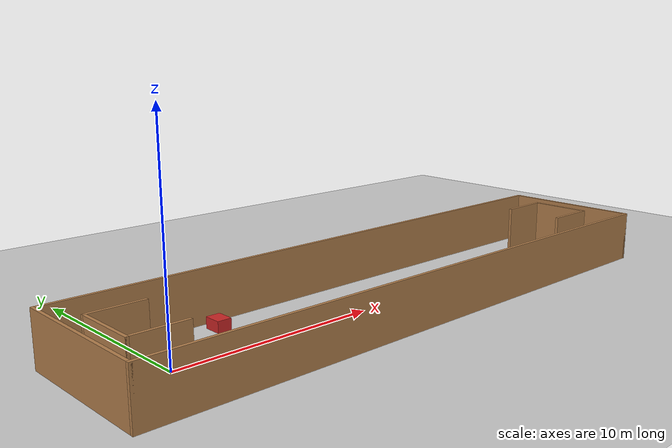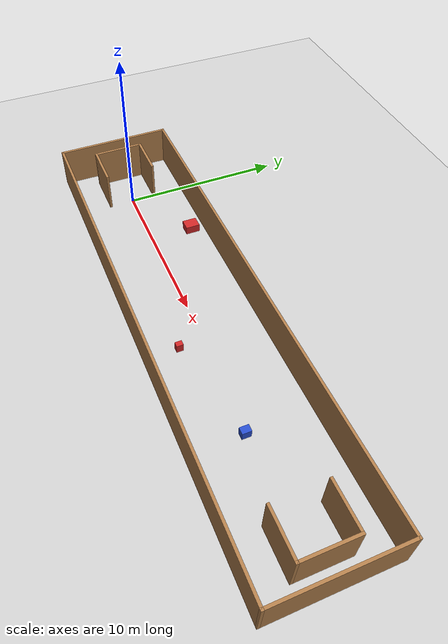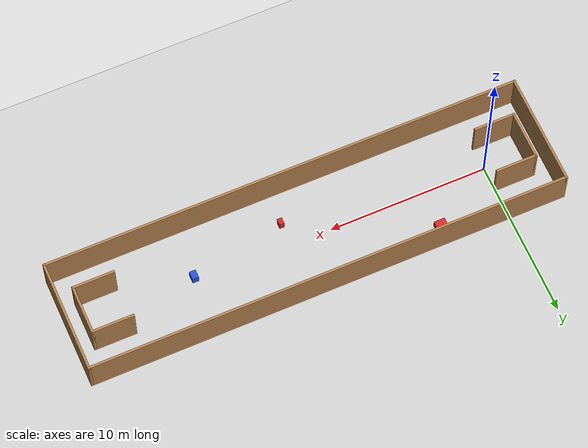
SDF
<sdf version="1.7">
 <world name="default">
  <light name="sun" type="directional">
   <pose>0 0 10 0 -0 0</pose>
   <diffuse>0.8 0.8 0.8 1</diffuse>
   <specular>0.2 0.2 0.2 1</specular>
   <attenuation>
    <range>1000</range>
    <constant>0.9</constant>
    <linear>0.01</linear>
    <quadratic>0.001</quadratic>
   </attenuation>
   <direction>-0.5 0.1 -0.9</direction>
   <spot><inner_angle>0</inner_angle><outer_angle>0</outer_angle><falloff>0</falloff></spot>
  </light>
  <model name="ground_plane">
   <static>1</static>
   <link name="link">
    <collision name="collision">
     <geometry><plane><normal>0 0 1</normal><size>100 100</size></plane></geometry>
     <surface>
      <contact><collide_bitmask>65535</collide_bitmask></contact>
      <friction><ode><mu>100</mu><mu2>50</mu2></ode></friction>
     </surface>
    </collision>
    <visual name="visual">
     <cast_shadows>0</cast_shadows>
     <geometry><plane><normal>0 0 1</normal><size>100 100</size></plane></geometry>
     <material>
      <script><uri>file://media/materials/scripts/gazebo.material</uri><name>Gazebo/Grey</name></script>
     </material>
    </visual>
   </link>
  </model>
  <gravity>0 0 -9.8</gravity>
  <magnetic_field>6e-06 2.3e-05 -4.2e-05</magnetic_field>
  <atmosphere type="adiabatic"/>
  <physics type="ode">
   <max_step_size>0.001</max_step_size>
   <real_time_factor>1</real_time_factor>
   <real_time_update_rate>1000</real_time_update_rate>
  </physics>
  <scene><ambient>0.4 0.4 0.4 1</ambient><background>0.7 0.7 0.7 1</background><shadows>1</shadows></scene>
  <spherical_coordinates>
   <surface_model>EARTH_WGS84</surface_model>
   <latitude_deg>0</latitude_deg>
   <longitude_deg>0</longitude_deg>
   <elevation>0</elevation>
   <heading_deg>0</heading_deg>
  </spherical_coordinates>
  <model name="my_base_walls">
   <link name="Wall_0">
    <collision name="Wall_0_Collision">
     <geometry><box><size>7.15 0.15 2.5</size></box></geometry>
     <pose>0 0 1.25 0 -0 0</pose>
    </collision>
    <visual name="Wall_0_Visual">
     <pose>0 0 1.25 0 -0 0</pose>
     <geometry><box><size>7.15 0.15 2.5</size></box></geometry>
     <material>
      <script><uri>file://media/materials/scripts/gazebo.material</uri><name>Gazebo/Wood</name></script>
      <ambient>1 1 1 1</ambient>
     </material>
     <meta><layer>0</layer></meta>
    </visual>
    <pose>-15 0 0 0 -0 1.5708</pose>
   </link>
   <link name="Wall_10">
    <collision name="Wall_10_Collision">
     <geometry><box><size>2.65 0.15 2.5</size></box></geometry>
     <pose>0 0 1.25 0 -0 0</pose>
    </collision>
    <visual name="Wall_10_Visual">
     <pose>0 0 1.25 0 -0 0</pose>
     <geometry><box><size>2.65 0.15 2.5</size></box></geometry>
     <material>
      <script><uri>file://media/materials/scripts/gazebo.material</uri><name>Gazebo/Wood</name></script>
      <ambient>1 1 1 1</ambient>
     </material>
     <meta><layer>0</layer></meta>
    </visual>
    <pose>-12.75 -1.5 0 0 -0 0</pose>
   </link>
   <link name="Wall_12">
    <collision name="Wall_12_Collision">
     <geometry><box><size>2.65 0.15 2.5</size></box></geometry>
     <pose>0 0 1.25 0 -0 0</pose>
    </collision>
    <visual name="Wall_12_Visual">
     <pose>0 0 1.25 0 -0 0</pose>
     <geometry><box><size>2.65 0.15 2.5</size></box></geometry>
     <material>
      <script><uri>file://media/materials/scripts/gazebo.material</uri><name>Gazebo/Wood</name></script>
      <ambient>1 1 1 1</ambient>
     </material>
     <meta><layer>0</layer></meta>
    </visual>
    <pose>-12.75 1.5 0 0 -0 0</pose>
   </link>
   <link name="Wall_14">
    <collision name="Wall_14_Collision">
     <geometry><box><size>3.15 0.15 2.5</size></box></geometry>
     <pose>0 0 1.25 0 -0 0</pose>
    </collision>
    <visual name="Wall_14_Visual">
     <pose>0 0 1.25 0 -0 0</pose>
     <geometry><box><size>3.15 0.15 2.5</size></box></geometry>
     <material>
      <script><uri>file://media/materials/scripts/gazebo.material</uri><name>Gazebo/Wood</name></script>
      <ambient>1 1 1 1</ambient>
     </material>
     <meta><layer>0</layer></meta>
    </visual>
    <pose>14 0 0 0 -0 -1.5708</pose>
   </link>
   <link name="Wall_15">
    <collision name="Wall_15_Collision">
     <geometry><box><size>2.65 0.15 2.5</size></box></geometry>
     <pose>0 0 1.25 0 -0 0</pose>
    </collision>
    <visual name="Wall_15_Visual">
     <pose>0 0 1.25 0 -0 0</pose>
     <geometry><box><size>2.65 0.15 2.5</size></box></geometry>
     <material>
      <script><uri>file://media/materials/scripts/gazebo.material</uri><name>Gazebo/Wood</name></script>
      <ambient>1 1 1 1</ambient>
     </material>
     <meta><layer>0</layer></meta>
    </visual>
    <pose>12.75 -1.5 0 0 -0 3.14159</pose>
   </link>
   <link name="Wall_17">
    <collision name="Wall_17_Collision">
     <geometry><box><size>2.65 0.15 2.5</size></box></geometry>
     <pose>0 0 1.25 0 -0 0</pose>
    </collision>
    <visual name="Wall_17_Visual">
     <pose>0 0 1.25 0 -0 0</pose>
     <geometry><box><size>2.65 0.15 2.5</size></box></geometry>
     <material>
      <script><uri>file://media/materials/scripts/gazebo.material</uri><name>Gazebo/Wood</name></script>
      <ambient>1 1 1 1</ambient>
     </material>
     <meta><layer>0</layer></meta>
    </visual>
    <pose>12.75 1.5 0 0 -0 3.14159</pose>
   </link>
   <link name="Wall_2">
    <collision name="Wall_2_Collision">
     <geometry><box><size>30.15 0.15 2.5</size></box></geometry>
     <pose>0 0 1.25 0 -0 0</pose>
    </collision>
    <visual name="Wall_2_Visual">
     <pose>0 0 1.25 0 -0 0</pose>
     <geometry><box><size>30.15 0.15 2.5</size></box></geometry>
     <material>
      <script><uri>file://media/materials/scripts/gazebo.material</uri><name>Gazebo/Wood</name></script>
      <ambient>1 1 1 1</ambient>
     </material>
     <meta><layer>0</layer></meta>
    </visual>
    <pose>-0 -3.5 0 0 -0 0</pose>
   </link>
   <link name="Wall_4">
    <collision name="Wall_4_Collision">
     <geometry><box><size>30.15 0.15 2.5</size></box></geometry>
     <pose>0 0 1.25 0 -0 0</pose>
    </collision>
    <visual name="Wall_4_Visual">
     <pose>0 0 1.25 0 -0 0</pose>
     <geometry><box><size>30.15 0.15 2.5</size></box></geometry>
     <material>
      <script><uri>file://media/materials/scripts/gazebo.material</uri><name>Gazebo/Wood</name></script>
      <ambient>1 1 1 1</ambient>
     </material>
     <meta><layer>0</layer></meta>
    </visual>
    <pose>-0 3.5 0 0 -0 0</pose>
   </link>
   <link name="Wall_6">
    <collision name="Wall_6_Collision">
     <geometry><box><size>7.15 0.15 2.5</size></box></geometry>
     <pose>0 0 1.25 0 -0 0</pose>
    </collision>
    <visual name="Wall_6_Visual">
     <pose>0 0 1.25 0 -0 0</pose>
     <geometry><box><size>7.15 0.15 2.5</size></box></geometry>
     <material>
      <script><uri>file://media/materials/scripts/gazebo.material</uri><name>Gazebo/Wood</name></script>
      <ambient>1 1 1 1</ambient>
     </material>
     <meta><layer>0</layer></meta>
    </visual>
    <pose>15 0 0 0 -0 -1.5708</pose>
   </link>
   <link name="Wall_9">
    <collision name="Wall_9_Collision">
     <geometry><box><size>3.15 0.15 2.5</size></box></geometry>
     <pose>0 0 1.25 0 -0 0</pose>
    </collision>
    <visual name="Wall_9_Visual">
     <pose>0 0 1.25 0 -0 0</pose>
     <geometry><box><size>3.15 0.15 2.5</size></box></geometry>
     <material>
      <script><uri>file://media/materials/scripts/gazebo.material</uri><name>Gazebo/Wood</name></script>
      <ambient>1 1 1 1</ambient>
     </material>
     <meta><layer>0</layer></meta>
    </visual>
    <pose>-14 0 0 0 -0 -1.5708</pose>
   </link>
   <static>1</static>
   <pose>11.5 0 0 0 -0 0</pose>
  </model>
  <model name="moving_box_1">
   <pose>3.9832387361931385 2.615154649680882 0 0 0 0</pose>
   <link name="link">
    <collision name="collision">
     <geometry><box><size>0.6888922829358579 0.8613720892863665 1</size></box></geometry>
     <surface><friction><ode><mu>0.1</mu><mu2>0.1</mu2></ode></friction></surface>
    </collision>
    <visual name="visual">
     <geometry><box><size>0.6888922829358579 0.8613720892863665 1</size></box></geometry>
     <material>
      <script><uri>file://media/materials/scripts/gazebo.material</uri><name>Gazebo/Red</name></script>
     </material>
    </visual>
   </link>
   <plugin name="move_box_plugin_1" filename="/home/otonom/fgm_ws/devel/lib/libmove_box_plugin.so">
    <velocity>-0.01411227701537987 -0.10568412004075832 0</velocity>
   </plugin>
  </model>
  <model name="moving_box_2">
   <pose>12.561618262060932 -1.4891567566093882 0 0 0 0</pose>
   <link name="link">
    <collision name="collision">
     <geometry><box><size>0.31049000976798474 0.39970338599888233 1</size></box></geometry>
     <surface><friction><ode><mu>0.1</mu><mu2>0.1</mu2></ode></friction></surface>
    </collision>
    <visual name="visual">
     <geometry><box><size>0.31049000976798474 0.39970338599888233 1</size></box></geometry>
     <material>
      <script><uri>file://media/materials/scripts/gazebo.material</uri><name>Gazebo/Red</name></script>
     </material>
    </visual>
   </link>
   <plugin name="move_box_plugin_2" filename="/home/otonom/fgm_ws/devel/lib/libmove_box_plugin.so">
    <velocity>-0.10808231346044511 0.07404045148406872 0</velocity>
   </plugin>
  </model>
  <model name="moving_box_3">
   <pose>18.558480239939314 -0.34852483309748594 0 0 0 0</pose>
   <link name="link">
    <collision name="collision">
     <geometry><box><size>0.40231096860411053 0.5223766837015407 1</size></box></geometry>
     <surface><friction><ode><mu>0.1</mu><mu2>0.1</mu2></ode></friction></surface>
    </collision>
    <visual name="visual">
     <geometry><box><size>0.40231096860411053 0.5223766837015407 1</size></box></geometry>
     <material>
      <script><uri>file://media/materials/scripts/gazebo.material</uri><name>Gazebo/Blue</name></script>
     </material>
    </visual>
   </link>
   <plugin name="move_box_plugin_3" filename="/home/otonom/fgm_ws/devel/lib/libmove_box_plugin.so">
    <velocity>0 0 0</velocity>
   </plugin>
  </model>
 </world>
</sdf>
